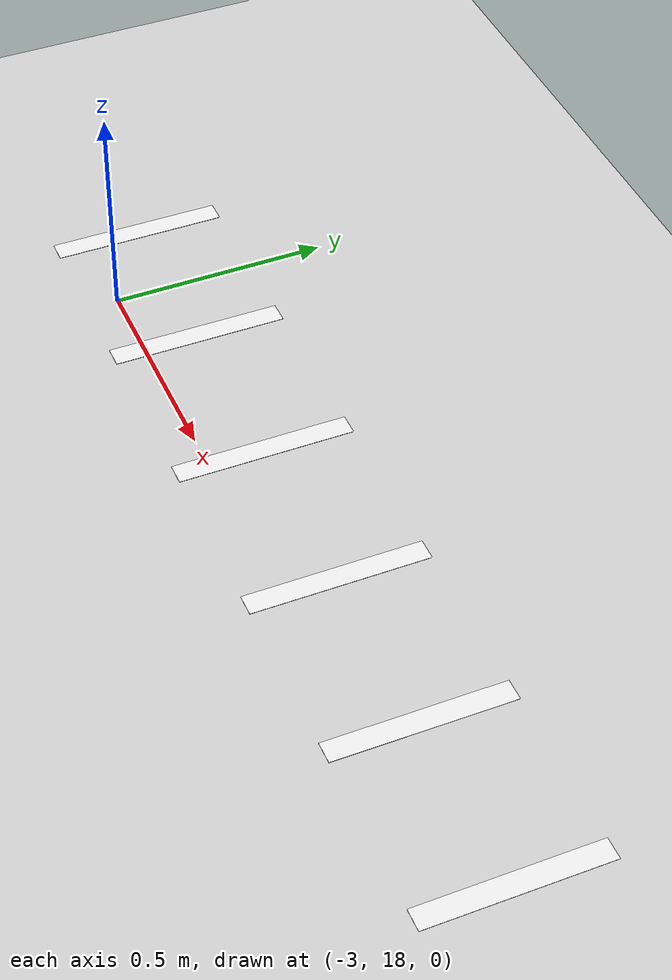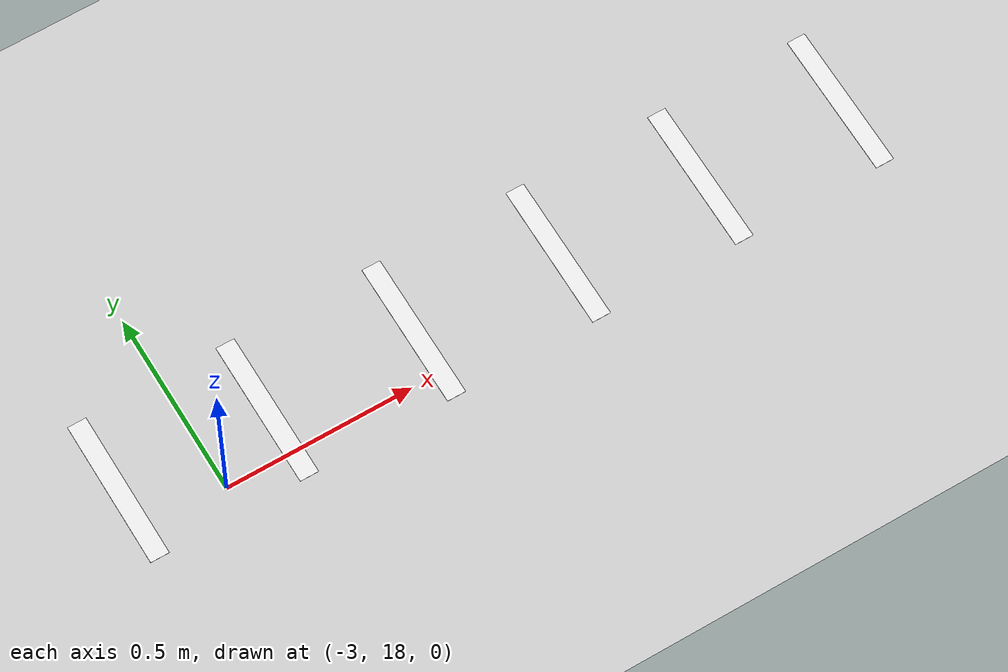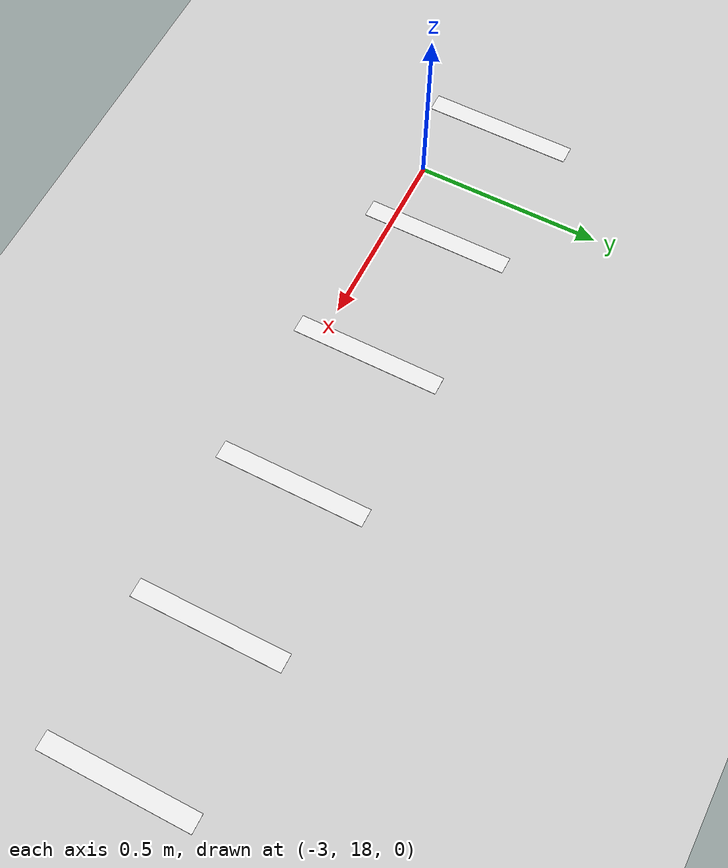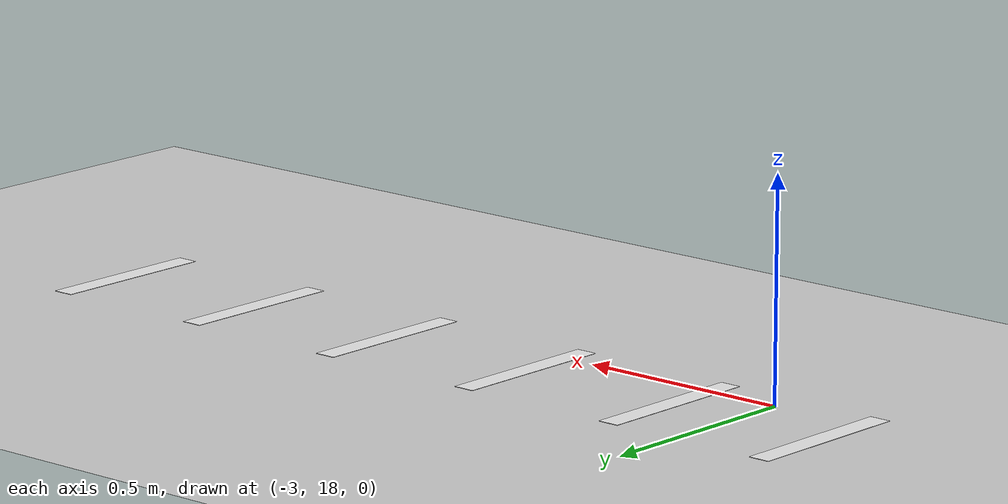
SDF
<sdf version="1.6">
 <world name="default">
  <model name="ground_plane">
   <static>1</static>
   <link name="link">
    <collision name="collision">
     <geometry><plane><normal>0 0 1</normal><size>100 100</size></plane></geometry>
     <surface><friction><ode><mu>100</mu><mu2>50</mu2></ode></friction></surface>
    </collision>
    <visual name="visual">
     <cast_shadows>0</cast_shadows>
     <geometry><plane><normal>0 0 1</normal><size>100 100</size></plane></geometry>
     <material>
      <script><uri>file://media/materials/scripts/gazebo.material</uri><name>Gazebo/Grey</name></script>
     </material>
    </visual>
   </link>
  </model>
  <model name="zebra_crossing_40cmx200cm_4">
   <link name="link_2">
    <inertial>
     <mass>1</mass>
     <inertia>
      <ixx>0.166667</ixx>
      <ixy>0</ixy>
      <ixz>0</ixz>
      <iyy>0.166667</iyy>
      <iyz>0</iyz>
      <izz>0.166667</izz>
     </inertia>
    </inertial>
    <visual name="ModelPreview_5::link_2::visual_1">
     <pose>-0.2 0 0 0 -0 0</pose>
     <geometry><box><size>0.05 0.4 0.001</size></box></geometry>
     <material>
      <lighting>1</lighting>
      <script><uri>file://media/materials/scripts/gazebo.material</uri><name>Gazebo/White</name></script>
     </material>
    </visual>
    <visual name="ModelPreview_5::link_2::visual_3">
     <pose>-0.6 0 0 0 -0 0</pose>
     <geometry><box><size>0.05 0.4 0.001</size></box></geometry>
     <material>
      <lighting>1</lighting>
      <script><uri>file://media/materials/scripts/gazebo.material</uri><name>Gazebo/White</name></script>
     </material>
    </visual>
    <visual name="ModelPreview_5::link_2::visual_4">
     <pose>1 0 0 0 -0 0</pose>
     <geometry><box><size>0.05 0.4 0.001</size></box></geometry>
     <material>
      <lighting>1</lighting>
      <script><uri>file://media/materials/scripts/gazebo.material</uri><name>Gazebo/White</name></script>
     </material>
    </visual>
    <visual name="visual">
     <pose>0.2 0 0 0 -0 0</pose>
     <geometry><box><size>0.05 0.4 0.001</size></box></geometry>
     <material>
      <lighting>1</lighting>
      <script><uri>file://media/materials/scripts/gazebo.material</uri><name>Gazebo/White</name></script>
     </material>
    </visual>
    <visual name="ModelPreview_5::link_2::visual_5">
     <pose>-1 0 0 0 -0 0</pose>
     <geometry><box><size>0.05 0.4 0.001</size></box></geometry>
     <material>
      <lighting>1</lighting>
      <script><uri>file://media/materials/scripts/gazebo.material</uri><name>Gazebo/White</name></script>
     </material>
    </visual>
    <visual name="ModelPreview_5::link_2::visual_2">
     <pose>0.6 0 0 0 -0 0</pose>
     <geometry><box><size>0.05 0.4 0.001</size></box></geometry>
     <material>
      <lighting>1</lighting>
      <script><uri>file://media/materials/scripts/gazebo.material</uri><name>Gazebo/White</name></script>
     </material>
    </visual>
    <collision name="collision_5">
     <pose>-1 0 0 0 -0 0</pose>
     <geometry><box><size>0.05 0.4 1e-05</size></box></geometry>
     <surface>
      <friction>
       <ode><mu>1</mu><mu2>1</mu2><fdir1>0 0 0</fdir1><slip1>0</slip1><slip2>0</slip2></ode>
       <torsional>
        <coefficient>1</coefficient>
        <patch_radius>0</patch_radius>
        <surface_radius>0</surface_radius>
        <use_patch_radius>1</use_patch_radius>
        <ode><slip>0</slip></ode>
       </torsional>
      </friction>
      <bounce><restitution_coefficient>0</restitution_coefficient><threshold>1e+06</threshold></bounce>
      <contact>
       <collide_without_contact>0</collide_without_contact>
       <collide_without_contact_bitmask>1</collide_without_contact_bitmask>
       <collide_bitmask>1</collide_bitmask>
       <ode>
        <soft_cfm>0</soft_cfm>
        <soft_erp>0.2</soft_erp>
        <kp>1e+13</kp>
        <kd>1</kd>
        <max_vel>0.01</max_vel>
        <min_depth>0</min_depth>
       </ode>
       <bullet>
        <split_impulse>1</split_impulse>
        <split_impulse_penetration_threshold>-0.01</split_impulse_penetration_threshold>
        <soft_cfm>0</soft_cfm>
        <soft_erp>0.2</soft_erp>
        <kp>1e+13</kp>
        <kd>1</kd>
       </bullet>
      </contact>
     </surface>
    </collision>
    <collision name="collision">
     <pose>0.2 0 0 0 -0 0</pose>
     <geometry><box><size>0.05 0.4 1e-05</size></box></geometry>
     <surface>
      <friction>
       <ode><mu>1</mu><mu2>1</mu2><fdir1>0 0 0</fdir1><slip1>0</slip1><slip2>0</slip2></ode>
       <torsional>
        <coefficient>1</coefficient>
        <patch_radius>0</patch_radius>
        <surface_radius>0</surface_radius>
        <use_patch_radius>1</use_patch_radius>
        <ode><slip>0</slip></ode>
       </torsional>
      </friction>
      <bounce><restitution_coefficient>0</restitution_coefficient><threshold>1e+06</threshold></bounce>
      <contact>
       <collide_without_contact>0</collide_without_contact>
       <collide_without_contact_bitmask>1</collide_without_contact_bitmask>
       <collide_bitmask>1</collide_bitmask>
       <ode>
        <soft_cfm>0</soft_cfm>
        <soft_erp>0.2</soft_erp>
        <kp>1e+13</kp>
        <kd>1</kd>
        <max_vel>0.01</max_vel>
        <min_depth>0</min_depth>
       </ode>
       <bullet>
        <split_impulse>1</split_impulse>
        <split_impulse_penetration_threshold>-0.01</split_impulse_penetration_threshold>
        <soft_cfm>0</soft_cfm>
        <soft_erp>0.2</soft_erp>
        <kp>1e+13</kp>
        <kd>1</kd>
       </bullet>
      </contact>
     </surface>
    </collision>
    <collision name="collision_3">
     <pose>-0.6 0 0 0 -0 0</pose>
     <geometry><box><size>0.05 0.4 1e-05</size></box></geometry>
     <surface>
      <friction>
       <ode><mu>1</mu><mu2>1</mu2><fdir1>0 0 0</fdir1><slip1>0</slip1><slip2>0</slip2></ode>
       <torsional>
        <coefficient>1</coefficient>
        <patch_radius>0</patch_radius>
        <surface_radius>0</surface_radius>
        <use_patch_radius>1</use_patch_radius>
        <ode><slip>0</slip></ode>
       </torsional>
      </friction>
      <bounce><restitution_coefficient>0</restitution_coefficient><threshold>1e+06</threshold></bounce>
      <contact>
       <collide_without_contact>0</collide_without_contact>
       <collide_without_contact_bitmask>1</collide_without_contact_bitmask>
       <collide_bitmask>1</collide_bitmask>
       <ode>
        <soft_cfm>0</soft_cfm>
        <soft_erp>0.2</soft_erp>
        <kp>1e+13</kp>
        <kd>1</kd>
        <max_vel>0.01</max_vel>
        <min_depth>0</min_depth>
       </ode>
       <bullet>
        <split_impulse>1</split_impulse>
        <split_impulse_penetration_threshold>-0.01</split_impulse_penetration_threshold>
        <soft_cfm>0</soft_cfm>
        <soft_erp>0.2</soft_erp>
        <kp>1e+13</kp>
        <kd>1</kd>
       </bullet>
      </contact>
     </surface>
    </collision>
    <collision name="collision_4">
     <pose>1 0 0 0 -0 0</pose>
     <geometry><box><size>0.05 0.4 1e-05</size></box></geometry>
     <surface>
      <friction>
       <ode><mu>1</mu><mu2>1</mu2><fdir1>0 0 0</fdir1><slip1>0</slip1><slip2>0</slip2></ode>
       <torsional>
        <coefficient>1</coefficient>
        <patch_radius>0</patch_radius>
        <surface_radius>0</surface_radius>
        <use_patch_radius>1</use_patch_radius>
        <ode><slip>0</slip></ode>
       </torsional>
      </friction>
      <bounce><restitution_coefficient>0</restitution_coefficient><threshold>1e+06</threshold></bounce>
      <contact>
       <collide_without_contact>0</collide_without_contact>
       <collide_without_contact_bitmask>1</collide_without_contact_bitmask>
       <collide_bitmask>1</collide_bitmask>
       <ode>
        <soft_cfm>0</soft_cfm>
        <soft_erp>0.2</soft_erp>
        <kp>1e+13</kp>
        <kd>1</kd>
        <max_vel>0.01</max_vel>
        <min_depth>0</min_depth>
       </ode>
       <bullet>
        <split_impulse>1</split_impulse>
        <split_impulse_penetration_threshold>-0.01</split_impulse_penetration_threshold>
        <soft_cfm>0</soft_cfm>
        <soft_erp>0.2</soft_erp>
        <kp>1e+13</kp>
        <kd>1</kd>
       </bullet>
      </contact>
     </surface>
    </collision>
    <collision name="collision_2">
     <pose>0.6 0 0 0 -0 0</pose>
     <geometry><box><size>0.05 0.4 1e-05</size></box></geometry>
     <surface>
      <friction>
       <ode><mu>1</mu><mu2>1</mu2><fdir1>0 0 0</fdir1><slip1>0</slip1><slip2>0</slip2></ode>
       <torsional>
        <coefficient>1</coefficient>
        <patch_radius>0</patch_radius>
        <surface_radius>0</surface_radius>
        <use_patch_radius>1</use_patch_radius>
        <ode><slip>0</slip></ode>
       </torsional>
      </friction>
      <bounce><restitution_coefficient>0</restitution_coefficient><threshold>1e+06</threshold></bounce>
      <contact>
       <collide_without_contact>0</collide_without_contact>
       <collide_without_contact_bitmask>1</collide_without_contact_bitmask>
       <collide_bitmask>1</collide_bitmask>
       <ode>
        <soft_cfm>0</soft_cfm>
        <soft_erp>0.2</soft_erp>
        <kp>1e+13</kp>
        <kd>1</kd>
        <max_vel>0.01</max_vel>
        <min_depth>0</min_depth>
       </ode>
       <bullet>
        <split_impulse>1</split_impulse>
        <split_impulse_penetration_threshold>-0.01</split_impulse_penetration_threshold>
        <soft_cfm>0</soft_cfm>
        <soft_erp>0.2</soft_erp>
        <kp>1e+13</kp>
        <kd>1</kd>
       </bullet>
      </contact>
     </surface>
    </collision>
    <collision name="collision_1">
     <pose>-0.2 0 0 0 -0 0</pose>
     <geometry><box><size>0.05 0.4 1e-05</size></box></geometry>
     <surface>
      <friction>
       <ode><mu>1</mu><mu2>1</mu2><fdir1>0 0 0</fdir1><slip1>0</slip1><slip2>0</slip2></ode>
       <torsional>
        <coefficient>1</coefficient>
        <patch_radius>0</patch_radius>
        <surface_radius>0</surface_radius>
        <use_patch_radius>1</use_patch_radius>
        <ode><slip>0</slip></ode>
       </torsional>
      </friction>
      <bounce><restitution_coefficient>0</restitution_coefficient><threshold>1e+06</threshold></bounce>
      <contact>
       <collide_without_contact>0</collide_without_contact>
       <collide_without_contact_bitmask>1</collide_without_contact_bitmask>
       <collide_bitmask>1</collide_bitmask>
       <ode>
        <soft_cfm>0</soft_cfm>
        <soft_erp>0.2</soft_erp>
        <kp>1e+13</kp>
        <kd>1</kd>
        <max_vel>0.01</max_vel>
        <min_depth>0</min_depth>
       </ode>
       <bullet>
        <split_impulse>1</split_impulse>
        <split_impulse_penetration_threshold>-0.01</split_impulse_penetration_threshold>
        <soft_cfm>0</soft_cfm>
        <soft_erp>0.2</soft_erp>
        <kp>1e+13</kp>
        <kd>1</kd>
       </bullet>
      </contact>
     </surface>
    </collision>
   </link>
   <static>1</static>
   <pose>-2.22088 18.1268 0 0 -0 0</pose>
  </model>
 </world>
</sdf>
